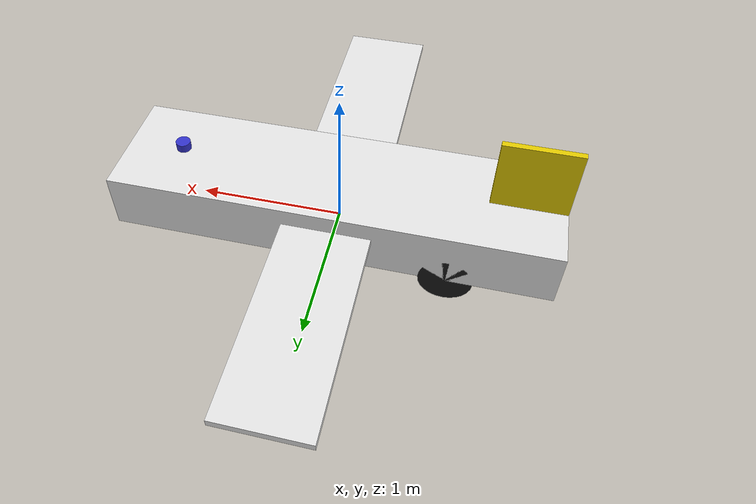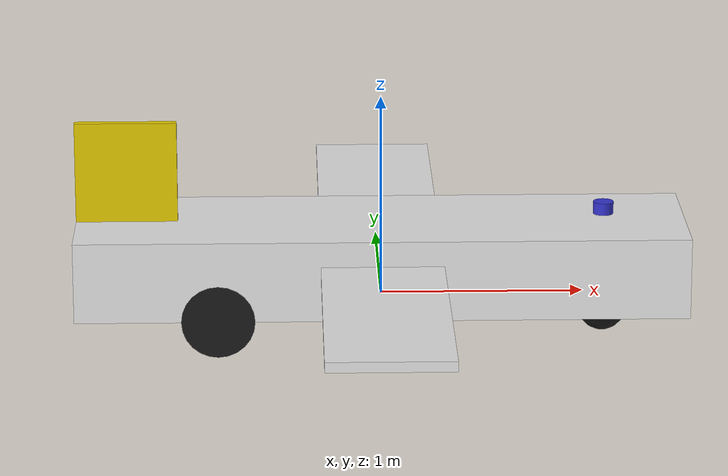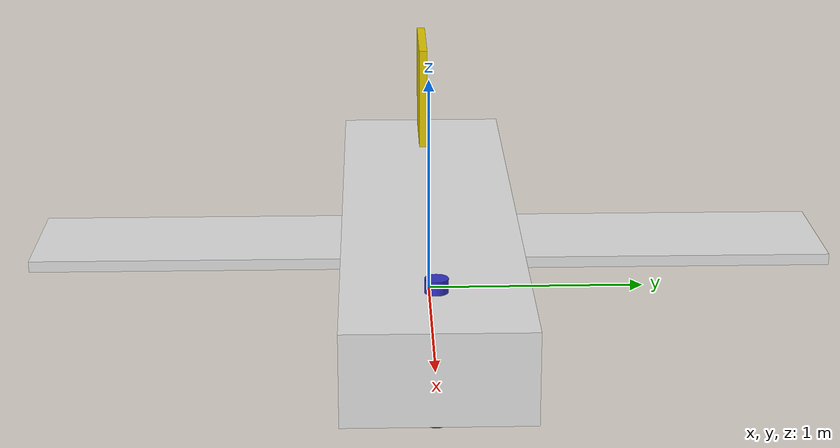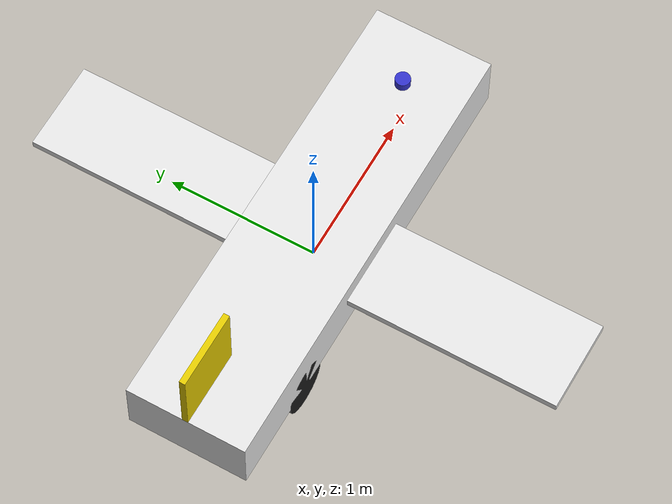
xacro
<?xml version="1.0"?>
<robot name="aircraft_taxi" xmlns:xacro="http://www.ros.org/wiki/xacro">

  <!-- PARAMETRELER                                                  -->

  <!-- Gövde boyutları -->
  <xacro:property name="body_length"   value="3.0"/>
  <xacro:property name="body_width"    value="0.8"/>
  <xacro:property name="body_height"   value="0.4"/>
  <xacro:property name="body_mass"     value="60.0"/>

  <!-- Kanat boyutları -->
  <xacro:property name="wing_length"   value="0.6"/>
  <xacro:property name="wing_span"     value="3.6"/>
  <xacro:property name="wing_thick"    value="0.05"/>

  <!-- Kuyruk fin boyutları -->
  <xacro:property name="tail_height"   value="0.5"/>
  <xacro:property name="tail_length"   value="0.5"/>
  <xacro:property name="tail_thick"    value="0.04"/>

  <!-- Tekerlek parametreleri -->
  <xacro:property name="wheel_radius"     value="0.18"/>
  <xacro:property name="wheel_width"      value="0.10"/>
  <xacro:property name="wheel_mass"       value="3.0"/>
  <xacro:property name="wheel_separation" value="0.70"/>

  <!-- Arka tekerlek X konumu (gövde merkezinden) -->
  <xacro:property name="rear_wheel_x"  value="-0.8"/>

  <!-- Burun tekeri X konumu -->
  <xacro:property name="caster_x"      value="1.1"/>
  <xacro:property name="caster_radius" value="0.12"/>

  <!-- Kamera konumu (gövde ön-altı, zemine ~6° bakış) -->
  <xacro:property name="cam_x"    value="1.3"/>
  <xacro:property name="cam_z"    value="-0.15"/>
  <xacro:property name="cam_pitch" value="0.1"/>     <!-- ~6 derece -->

  <!-- Lidar konumu (gövde ön-üstü) -->
  <xacro:property name="lidar_x"  value="1.1"/>
  <xacro:property name="lidar_z"  value="0.25"/>

  <!-- Inertia yardımcı makro -->
  <xacro:macro name="box_inertia" params="mass x y z">
    <inertial>
      <mass value="${mass}"/>
      <inertia
        ixx="${mass*(y*y+z*z)/12.0}"
        ixy="0" ixz="0"
        iyy="${mass*(x*x+z*z)/12.0}"
        iyz="0"
        izz="${mass*(x*x+y*y)/12.0}"/>
    </inertial>
  </xacro:macro>

  <xacro:macro name="cylinder_inertia" params="mass r h">
    <inertial>
      <mass value="${mass}"/>
      <inertia
        ixx="${mass*(3*r*r+h*h)/12.0}"
        ixy="0" ixz="0"
        iyy="${mass*(3*r*r+h*h)/12.0}"
        iyz="0"
        izz="${mass*r*r/2.0}"/>
    </inertial>
  </xacro:macro>

  <!-- BAĞLANTI: base_link                                           -->
  <link name="base_link"/>

  <!-- GÖVDE (CHASSIS)                                               -->
  <joint name="base_to_chassis" type="fixed">
    <parent link="base_link"/>
    <child  link="chassis"/>
    <origin xyz="0 0 ${wheel_radius}" rpy="0 0 0"/>
  </joint>

  <link name="chassis">
    <xacro:box_inertia mass="${body_mass}" x="${body_length}" y="${body_width}" z="${body_height}"/>
    <visual>
      <origin xyz="0 0 0" rpy="0 0 0"/>
      <geometry>
        <box size="${body_length} ${body_width} ${body_height}"/>
      </geometry>
      <material name="aircraft_white">
        <color rgba="0.9 0.9 0.9 1.0"/>
      </material>
    </visual>
    <collision>
      <origin xyz="0 0 0" rpy="0 0 0"/>
      <geometry>
        <box size="${body_length} ${body_width} ${body_height}"/>
      </geometry>
    </collision>
  </link>

  <!-- KANATLAR (sadece görsel)                                      -->
  <joint name="chassis_to_wings" type="fixed">
    <parent link="chassis"/>
    <child  link="wings"/>
    <origin xyz="0 0 0" rpy="0 0 0"/>
  </joint>

  <link name="wings">
    <visual>
      <origin xyz="0 0 0.05" rpy="0 0 0"/>
      <geometry>
        <box size="${wing_length} ${wing_span} ${wing_thick}"/>
      </geometry>
      <material name="aircraft_white">
        <color rgba="0.9 0.9 0.9 1.0"/>
      </material>
    </visual>
  </link>

  <!-- KUYRUK FİN (sadece görsel)                                    -->
  <joint name="chassis_to_tail_fin" type="fixed">
    <parent link="chassis"/>
    <child  link="tail_fin"/>
    <origin xyz="${-body_length/2 + tail_length/2} 0 ${body_height/2 + tail_height/2}" rpy="0 0 0"/>
  </joint>

  <link name="tail_fin">
    <visual>
      <origin xyz="0 0 0" rpy="0 0 0"/>
      <geometry>
        <box size="${tail_length} ${tail_thick} ${tail_height}"/>
      </geometry>
      <material name="aircraft_yellow">
        <color rgba="0.9 0.8 0.0 1.0"/>
      </material>
    </visual>
  </link>

  <!-- SOL ARKA TEKERLEK                                             -->
  <joint name="left_wheel_joint" type="continuous">
    <parent link="chassis"/>
    <child  link="left_wheel"/>
    <origin xyz="${rear_wheel_x} ${wheel_separation/2} ${-body_height/2}" rpy="-${pi/2} 0 0"/>
    <axis xyz="0 0 1"/>
  </joint>

  <link name="left_wheel">
    <xacro:cylinder_inertia mass="${wheel_mass}" r="${wheel_radius}" h="${wheel_width}"/>
    <visual>
      <geometry>
        <cylinder radius="${wheel_radius}" length="${wheel_width}"/>
      </geometry>
      <material name="wheel_black">
        <color rgba="0.1 0.1 0.1 1.0"/>
      </material>
    </visual>
    <collision>
      <geometry>
        <cylinder radius="${wheel_radius}" length="${wheel_width}"/>
      </geometry>
    </collision>
  </link>

  <!-- SAĞ ARKA TEKERLEK                                             -->
  <joint name="right_wheel_joint" type="continuous">
    <parent link="chassis"/>
    <child  link="right_wheel"/>
    <origin xyz="${rear_wheel_x} ${-wheel_separation/2} ${-body_height/2}" rpy="-${pi/2} 0 0"/>
    <axis xyz="0 0 1"/>
  </joint>

  <link name="right_wheel">
    <xacro:cylinder_inertia mass="${wheel_mass}" r="${wheel_radius}" h="${wheel_width}"/>
    <visual>
      <geometry>
        <cylinder radius="${wheel_radius}" length="${wheel_width}"/>
      </geometry>
      <material name="wheel_black">
        <color rgba="0.1 0.1 0.1 1.0"/>
      </material>
    </visual>
    <collision>
      <geometry>
        <cylinder radius="${wheel_radius}" length="${wheel_width}"/>
      </geometry>
    </collision>
  </link>

  <!-- BURUN TEKERİ (CASTER) — pasif, fixed joint                   -->
  <joint name="caster_wheel_joint" type="fixed">
    <parent link="chassis"/>
    <child  link="caster_wheel"/>
    <origin xyz="${caster_x} 0 ${-body_height/2 - (wheel_radius - caster_radius)}" rpy="0 0 0"/>
  </joint>

  <link name="caster_wheel">
    <inertial>
      <mass value="1.0"/>
      <inertia ixx="0.001" ixy="0" ixz="0" iyy="0.001" iyz="0" izz="0.001"/>
    </inertial>
    <visual>
      <geometry>
        <sphere radius="${caster_radius}"/>
      </geometry>
      <material name="wheel_black">
        <color rgba="0.1 0.1 0.1 1.0"/>
      </material>
    </visual>
    <collision>
      <geometry>
        <sphere radius="${caster_radius}"/>
      </geometry>
    </collision>
  </link>

  <gazebo reference="caster_wheel">
    <collision>
      <surface>
        <friction>
          <ode>
            <mu>0.0</mu>
            <mu2>0.0</mu2>
          </ode>
        </friction>
      </surface>
    </collision>
  </gazebo>

  <!-- KAMERA                                                        -->
  <joint name="camera_joint" type="fixed">
    <parent link="chassis"/>
    <child  link="camera_link"/>
    <origin xyz="${cam_x} 0 ${cam_z}" rpy="0 ${cam_pitch} 0"/>
  </joint>

  <link name="camera_link">
    <visual>
      <geometry>
        <box size="0.05 0.08 0.05"/>
      </geometry>
      <material name="camera_dark">
        <color rgba="0.1 0.1 0.1 1.0"/>
      </material>
    </visual>
  </link>

  <!-- ROS kamera optik frame standart yönelimi -->
  <joint name="camera_optical_joint" type="fixed">
    <parent link="camera_link"/>
    <child  link="camera_optical_frame"/>
    <origin xyz="0 0 0" rpy="${-pi/2} 0 ${-pi/2}"/>
  </joint>

  <link name="camera_optical_frame"/>

  <!-- Kamera Gazebo sensörü -->
  <gazebo reference="camera_link">
    <sensor name="front_camera" type="camera">
      <camera>
        <horizontal_fov>1.047</horizontal_fov>
        <image>
          <width>640</width>
          <height>480</height>
          <format>R8G8B8</format>
        </image>
        <clip>
          <near>0.05</near>
          <far>100</far>
        </clip>
        <noise>
          <type>gaussian</type>
          <mean>0.0</mean>
          <stddev>0.007</stddev>
        </noise>
      </camera>
      <always_on>1</always_on>
      <update_rate>30</update_rate>
      <visualize>true</visualize>
      <topic>/aircraft_taxi/image_raw</topic>
    </sensor>
  </gazebo>

  <!-- LIDAR                                                         -->
  <joint name="lidar_joint" type="fixed">
    <parent link="chassis"/>
    <child  link="lidar_link"/>
    <origin xyz="${lidar_x} 0 ${lidar_z}" rpy="0 0 0"/>
  </joint>

  <link name="lidar_link">
    <visual>
      <geometry>
        <cylinder radius="0.05" length="0.06"/>
      </geometry>
      <material name="lidar_color">
        <color rgba="0.2 0.2 0.8 1.0"/>
      </material>
    </visual>
  </link>

  <!-- Lidar Gazebo sensörü -->
  <gazebo reference="lidar_link">
    <sensor name="lidar" type="gpu_lidar">
      <topic>/aircraft_taxi/scan</topic>
      <update_rate>10</update_rate>
      <lidar>
        <scan>
          <horizontal>
            <samples>360</samples>
            <resolution>1</resolution>
            <min_angle>-1.5708</min_angle>
            <max_angle>1.5708</max_angle>
          </horizontal>
        </scan>
        <range>
          <min>0.1</min>
          <max>15.0</max>
          <resolution>0.01</resolution>
        </range>
        <noise>
          <type>gaussian</type>
          <mean>0.0</mean>
          <stddev>0.01</stddev>
        </noise>
      </lidar>
      <always_on>1</always_on>
      <visualize>true</visualize>
    </sensor>
  </gazebo>

  <!-- GAZEBO PLUGİN'LERİ                                            -->

  <!-- Diferansiyel sürüş plugin'i (Ignition Fortress) -->
  <gazebo>
    <plugin filename="gz-sim-diff-drive-system"
            name="gz::sim::systems::DiffDrive">
      <left_joint>left_wheel_joint</left_joint>
      <right_joint>right_wheel_joint</right_joint>
      <wheel_separation>${wheel_separation}</wheel_separation>
      <wheel_radius>${wheel_radius}</wheel_radius>
      <odom_publish_frequency>10</odom_publish_frequency>
      <topic>/aircraft_taxi/cmd_vel</topic>
      <odom_topic>/aircraft_taxi/odom</odom_topic>
      <tf_topic>/tf</tf_topic>
      <frame_id>odom</frame_id>
      <child_frame_id>base_link</child_frame_id>
      <min_velocity>-3.0</min_velocity>
      <max_velocity>3.0</max_velocity>
      <min_acceleration>-3.0</min_acceleration>
      <max_acceleration>3.0</max_acceleration>
    </plugin>
  </gazebo>

  <!-- Joint state yayımcı plugin'i (Ignition Fortress) -->
  <gazebo>
    <plugin filename="gz-sim-joint-state-publisher-system"
            name="gz::sim::systems::JointStatePublisher">
      <topic>/aircraft_taxi/joint_states</topic>
    </plugin>
  </gazebo>

  <!-- Gövde malzeme rengi -->
  <gazebo reference="chassis">
    <material>Gazebo/White</material>
  </gazebo>

  <gazebo reference="wings">
    <material>Gazebo/White</material>
  </gazebo>

  <gazebo reference="tail_fin">
    <material>Gazebo/Yellow</material>
  </gazebo>

  <gazebo reference="left_wheel">
    <mu1>1.0</mu1>
    <mu2>1.0</mu2>
    <slip1>0.0</slip1>
    <slip2>0.0</slip2>
  </gazebo>

  <gazebo reference="right_wheel">
    <mu1>1.0</mu1>
    <mu2>1.0</mu2>
    <slip1>0.0</slip1>
    <slip2>0.0</slip2>
  </gazebo>

</robot>
